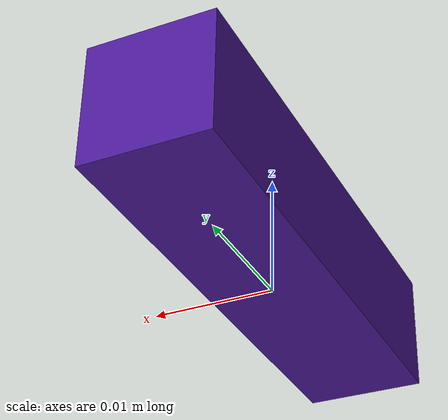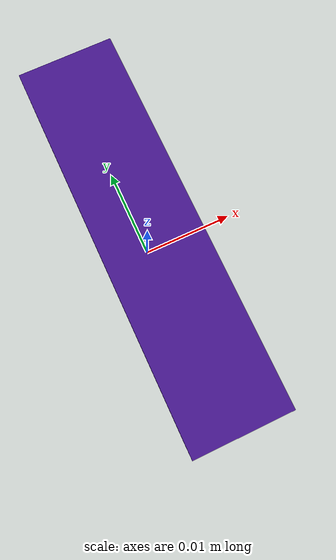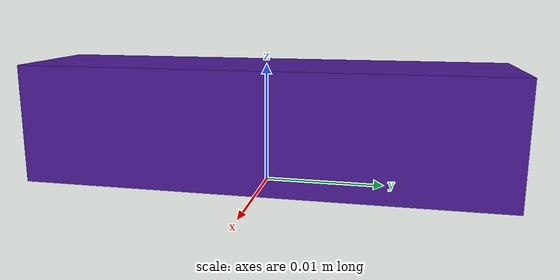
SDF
<?xml version="1.0" ?>
<sdf version="1.6">
  <model name="mathstick4">
    <static>false</static>
    <link name="link">
      <collision name="collision">
        <geometry>
          <mesh>
            <uri>model://mathstick4/meshes/MathStick4.stl</uri>
            <scale>0.001 0.001 0.001</scale>
          </mesh>
        </geometry>
        <surface>
          <friction>
            <ode>
              <mu>100.0</mu> <!-- High coefficient of friction -->
              <mu2>100.0</mu2> <!-- High coefficient of friction -->
            </ode>
          </friction>
        </surface>
      </collision>
      <visual name="visual">
        <geometry>
          <mesh>
            <uri>model://mathstick4/meshes/MathStick4.stl</uri>
            <scale>0.001 0.001 0.001</scale>
          </mesh>
        </geometry>
        <material>
          <script>
            <uri>file://media/materials/scripts/gazebo.material</uri>
            <name>Gazebo/Indigo</name> <!-- Change this to the desired color -->
          </script>
        </material>
      </visual>
      <inertial>
        <mass>0.02</mass>
        <inertia>
          <ixx>0.00000283333333333333</ixx>
          <ixy>0.0</ixy>
          <ixz>0.0</ixz>
          <iyy>0.000000333333333333333</iyy>
          <iyz>0.0</iyz>
          <izz>0.00000283333333333333</izz>
        </inertia>
      </inertial>
    </link>
  </model>
</sdf>
